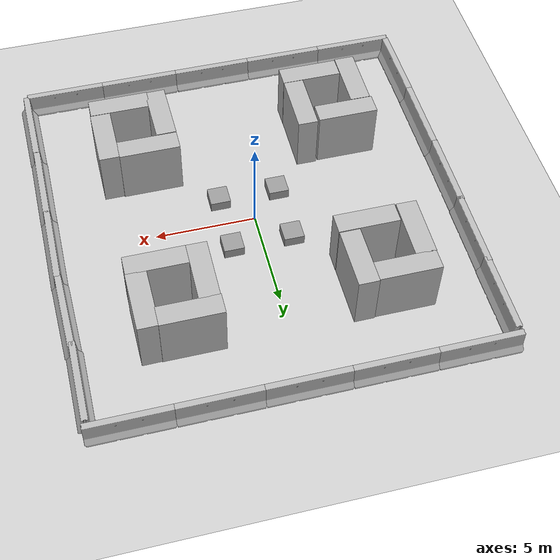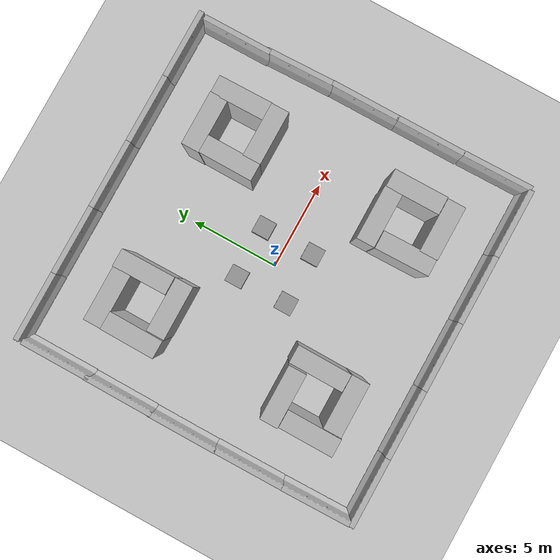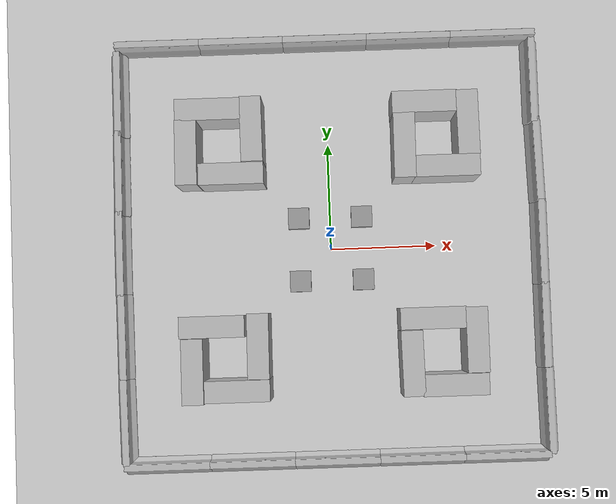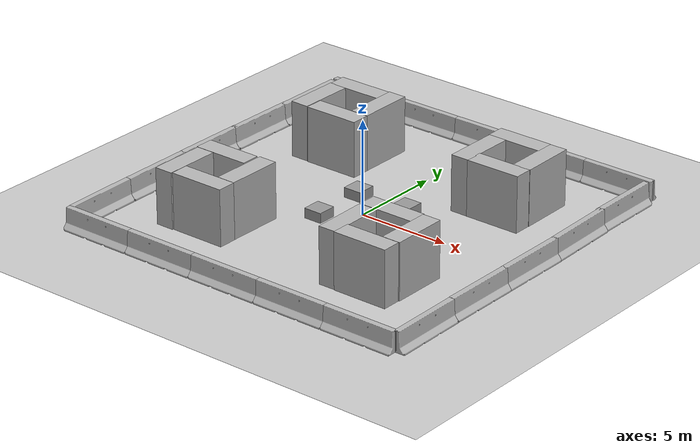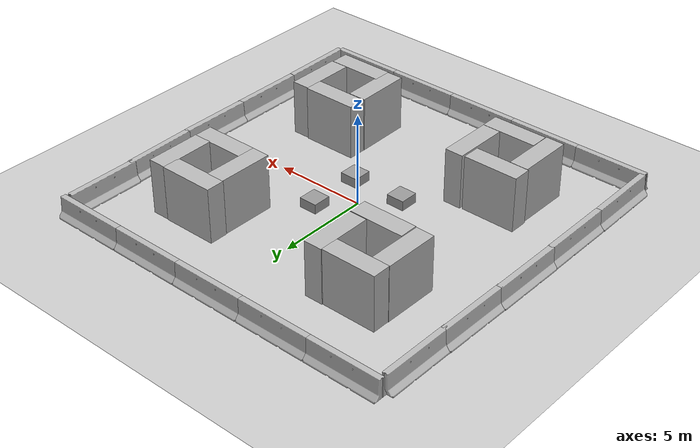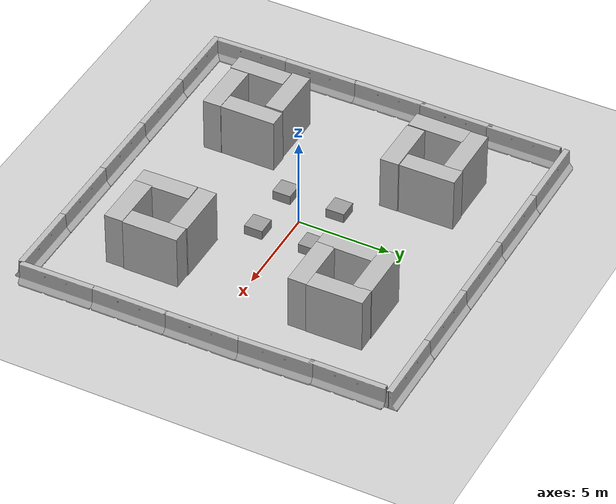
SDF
<sdf version="1.4">
 <world name="default">
  <light name="sun" type="directional">
   <pose>0 0 10 0 -0 0</pose>
   <diffuse>0.8 0.8 0.8 1</diffuse>
   <specular>0.2 0.2 0.2 1</specular>
   <attenuation>
    <range>1000</range>
    <constant>0.9</constant>
    <linear>0.01</linear>
    <quadratic>0.001</quadratic>
   </attenuation>
   <direction>-0.5 0.1 -0.9</direction>
  </light>
  <model name="ground_plane">
   <static>1</static>
   <link name="link">
    <collision name="collision">
     <geometry><plane><normal>0 0 1</normal><size>100 100</size></plane></geometry>
     <surface><friction><ode><mu>100</mu><mu2>50</mu2></ode></friction></surface>
    </collision>
    <visual name="visual">
     <cast_shadows>0</cast_shadows>
     <geometry><plane><normal>0 0 1</normal><size>100 100</size></plane></geometry>
     <material>
      <script><uri>file://media/materials/scripts/gazebo.material</uri><name>Gazebo/Grey</name></script>
     </material>
    </visual>
    <velocity_decay><linear>0</linear><angular>0</angular></velocity_decay>
   </link>
  </model>
  <physics type="ode">
   <max_step_size>0.001</max_step_size>
   <real_time_factor>1</real_time_factor>
   <real_time_update_rate>1000</real_time_update_rate>
   <gravity>0 0 -9.8</gravity>
  </physics>
  <scene><ambient>0.4 0.4 0.4 1</ambient><background>0.7 0.7 0.7 1</background><shadows>1</shadows></scene>
  <spherical_coordinates>
   <surface_model>EARTH_WGS84</surface_model>
   <latitude_deg>0</latitude_deg>
   <longitude_deg>0</longitude_deg>
   <elevation>0</elevation>
   <heading_deg>0</heading_deg>
  </spherical_coordinates>
  <model name="jersey_barrier">
   <static>1</static>
   <link name="link">
    <visual name="visual">
     <geometry><mesh><uri>model://jersey_barrier/meshes/jersey_barrier.dae</uri></mesh></geometry>
    </visual>
    <collision name="upright">
     <pose>0 0 0.5715 0 -0 0</pose>
     <geometry><box><size>4.06542 0.3063 1.143</size></box></geometry>
    </collision>
    <collision name="base">
     <pose>0 0 0.032258 0 -0 0</pose>
     <geometry><box><size>4.06542 0.8107 0.064516</size></box></geometry>
    </collision>
    <collision name="base2">
     <pose>0 0 0.1 0 -0 0</pose>
     <geometry><box><size>4.06542 0.65 0.1</size></box></geometry>
    </collision>
    <collision name="base3">
     <pose>0 0 0.2 0 -0 0</pose>
     <geometry><box><size>4.06542 0.5 0.1</size></box></geometry>
    </collision>
    <collision name="left-angle">
     <pose>0 -0.224 0.2401 0.9 -0 0</pose>
     <geometry><box><size>4.06542 0.5 0.064516</size></box></geometry>
    </collision>
    <collision name="right-angle">
     <pose>0 0.224 0.2401 -0.9 0 0</pose>
     <geometry><box><size>4.06542 0.5 0.064516</size></box></geometry>
    </collision>
    <velocity_decay><linear>0</linear><angular>0</angular></velocity_decay>
   </link>
   <pose>0 -10 0 0 -0 0</pose>
  </model>
  <model name="jersey_barrier_0">
   <static>1</static>
   <link name="link">
    <visual name="visual">
     <geometry><mesh><uri>model://jersey_barrier/meshes/jersey_barrier.dae</uri></mesh></geometry>
    </visual>
    <collision name="upright">
     <pose>0 0 0.5715 0 -0 0</pose>
     <geometry><box><size>4.06542 0.3063 1.143</size></box></geometry>
    </collision>
    <collision name="base">
     <pose>0 0 0.032258 0 -0 0</pose>
     <geometry><box><size>4.06542 0.8107 0.064516</size></box></geometry>
    </collision>
    <collision name="base2">
     <pose>0 0 0.1 0 -0 0</pose>
     <geometry><box><size>4.06542 0.65 0.1</size></box></geometry>
    </collision>
    <collision name="base3">
     <pose>0 0 0.2 0 -0 0</pose>
     <geometry><box><size>4.06542 0.5 0.1</size></box></geometry>
    </collision>
    <collision name="left-angle">
     <pose>0 -0.224 0.2401 0.9 -0 0</pose>
     <geometry><box><size>4.06542 0.5 0.064516</size></box></geometry>
    </collision>
    <collision name="right-angle">
     <pose>0 0.224 0.2401 -0.9 0 0</pose>
     <geometry><box><size>4.06542 0.5 0.064516</size></box></geometry>
    </collision>
    <velocity_decay><linear>0</linear><angular>0</angular></velocity_decay>
   </link>
   <pose>0 10 0 0 -0 0</pose>
  </model>
  <model name="jersey_barrier_1">
   <static>1</static>
   <link name="link">
    <visual name="visual">
     <geometry><mesh><uri>model://jersey_barrier/meshes/jersey_barrier.dae</uri></mesh></geometry>
    </visual>
    <collision name="upright">
     <pose>0 0 0.5715 0 -0 0</pose>
     <geometry><box><size>4.06542 0.3063 1.143</size></box></geometry>
    </collision>
    <collision name="base">
     <pose>0 0 0.032258 0 -0 0</pose>
     <geometry><box><size>4.06542 0.8107 0.064516</size></box></geometry>
    </collision>
    <collision name="base2">
     <pose>0 0 0.1 0 -0 0</pose>
     <geometry><box><size>4.06542 0.65 0.1</size></box></geometry>
    </collision>
    <collision name="base3">
     <pose>0 0 0.2 0 -0 0</pose>
     <geometry><box><size>4.06542 0.5 0.1</size></box></geometry>
    </collision>
    <collision name="left-angle">
     <pose>0 -0.224 0.2401 0.9 -0 0</pose>
     <geometry><box><size>4.06542 0.5 0.064516</size></box></geometry>
    </collision>
    <collision name="right-angle">
     <pose>0 0.224 0.2401 -0.9 0 0</pose>
     <geometry><box><size>4.06542 0.5 0.064516</size></box></geometry>
    </collision>
    <velocity_decay><linear>0</linear><angular>0</angular></velocity_decay>
   </link>
   <pose>4 10 0 0 -0 0</pose>
  </model>
  <model name="jersey_barrier_2">
   <static>1</static>
   <link name="link">
    <visual name="visual">
     <geometry><mesh><uri>model://jersey_barrier/meshes/jersey_barrier.dae</uri></mesh></geometry>
    </visual>
    <collision name="upright">
     <pose>0 0 0.5715 0 -0 0</pose>
     <geometry><box><size>4.06542 0.3063 1.143</size></box></geometry>
    </collision>
    <collision name="base">
     <pose>0 0 0.032258 0 -0 0</pose>
     <geometry><box><size>4.06542 0.8107 0.064516</size></box></geometry>
    </collision>
    <collision name="base2">
     <pose>0 0 0.1 0 -0 0</pose>
     <geometry><box><size>4.06542 0.65 0.1</size></box></geometry>
    </collision>
    <collision name="base3">
     <pose>0 0 0.2 0 -0 0</pose>
     <geometry><box><size>4.06542 0.5 0.1</size></box></geometry>
    </collision>
    <collision name="left-angle">
     <pose>0 -0.224 0.2401 0.9 -0 0</pose>
     <geometry><box><size>4.06542 0.5 0.064516</size></box></geometry>
    </collision>
    <collision name="right-angle">
     <pose>0 0.224 0.2401 -0.9 0 0</pose>
     <geometry><box><size>4.06542 0.5 0.064516</size></box></geometry>
    </collision>
    <velocity_decay><linear>0</linear><angular>0</angular></velocity_decay>
   </link>
   <pose>-4 10 0 0 -0 0</pose>
  </model>
  <model name="jersey_barrier_3">
   <static>1</static>
   <link name="link">
    <visual name="visual">
     <geometry><mesh><uri>model://jersey_barrier/meshes/jersey_barrier.dae</uri></mesh></geometry>
    </visual>
    <collision name="upright">
     <pose>0 0 0.5715 0 -0 0</pose>
     <geometry><box><size>4.06542 0.3063 1.143</size></box></geometry>
    </collision>
    <collision name="base">
     <pose>0 0 0.032258 0 -0 0</pose>
     <geometry><box><size>4.06542 0.8107 0.064516</size></box></geometry>
    </collision>
    <collision name="base2">
     <pose>0 0 0.1 0 -0 0</pose>
     <geometry><box><size>4.06542 0.65 0.1</size></box></geometry>
    </collision>
    <collision name="base3">
     <pose>0 0 0.2 0 -0 0</pose>
     <geometry><box><size>4.06542 0.5 0.1</size></box></geometry>
    </collision>
    <collision name="left-angle">
     <pose>0 -0.224 0.2401 0.9 -0 0</pose>
     <geometry><box><size>4.06542 0.5 0.064516</size></box></geometry>
    </collision>
    <collision name="right-angle">
     <pose>0 0.224 0.2401 -0.9 0 0</pose>
     <geometry><box><size>4.06542 0.5 0.064516</size></box></geometry>
    </collision>
    <velocity_decay><linear>0</linear><angular>0</angular></velocity_decay>
   </link>
   <pose>-8 10 0 0 -0 0</pose>
  </model>
  <model name="jersey_barrier_4">
   <static>1</static>
   <link name="link">
    <visual name="visual">
     <geometry><mesh><uri>model://jersey_barrier/meshes/jersey_barrier.dae</uri></mesh></geometry>
    </visual>
    <collision name="upright">
     <pose>0 0 0.5715 0 -0 0</pose>
     <geometry><box><size>4.06542 0.3063 1.143</size></box></geometry>
    </collision>
    <collision name="base">
     <pose>0 0 0.032258 0 -0 0</pose>
     <geometry><box><size>4.06542 0.8107 0.064516</size></box></geometry>
    </collision>
    <collision name="base2">
     <pose>0 0 0.1 0 -0 0</pose>
     <geometry><box><size>4.06542 0.65 0.1</size></box></geometry>
    </collision>
    <collision name="base3">
     <pose>0 0 0.2 0 -0 0</pose>
     <geometry><box><size>4.06542 0.5 0.1</size></box></geometry>
    </collision>
    <collision name="left-angle">
     <pose>0 -0.224 0.2401 0.9 -0 0</pose>
     <geometry><box><size>4.06542 0.5 0.064516</size></box></geometry>
    </collision>
    <collision name="right-angle">
     <pose>0 0.224 0.2401 -0.9 0 0</pose>
     <geometry><box><size>4.06542 0.5 0.064516</size></box></geometry>
    </collision>
    <velocity_decay><linear>0</linear><angular>0</angular></velocity_decay>
   </link>
   <pose>-4 -10 0 0 -0 0</pose>
  </model>
  <model name="jersey_barrier_5">
   <static>1</static>
   <link name="link">
    <visual name="visual">
     <geometry><mesh><uri>model://jersey_barrier/meshes/jersey_barrier.dae</uri></mesh></geometry>
    </visual>
    <collision name="upright">
     <pose>0 0 0.5715 0 -0 0</pose>
     <geometry><box><size>4.06542 0.3063 1.143</size></box></geometry>
    </collision>
    <collision name="base">
     <pose>0 0 0.032258 0 -0 0</pose>
     <geometry><box><size>4.06542 0.8107 0.064516</size></box></geometry>
    </collision>
    <collision name="base2">
     <pose>0 0 0.1 0 -0 0</pose>
     <geometry><box><size>4.06542 0.65 0.1</size></box></geometry>
    </collision>
    <collision name="base3">
     <pose>0 0 0.2 0 -0 0</pose>
     <geometry><box><size>4.06542 0.5 0.1</size></box></geometry>
    </collision>
    <collision name="left-angle">
     <pose>0 -0.224 0.2401 0.9 -0 0</pose>
     <geometry><box><size>4.06542 0.5 0.064516</size></box></geometry>
    </collision>
    <collision name="right-angle">
     <pose>0 0.224 0.2401 -0.9 0 0</pose>
     <geometry><box><size>4.06542 0.5 0.064516</size></box></geometry>
    </collision>
    <velocity_decay><linear>0</linear><angular>0</angular></velocity_decay>
   </link>
   <pose>-8 -10 0 0 -0 0</pose>
  </model>
  <model name="jersey_barrier_6">
   <static>1</static>
   <link name="link">
    <visual name="visual">
     <geometry><mesh><uri>model://jersey_barrier/meshes/jersey_barrier.dae</uri></mesh></geometry>
    </visual>
    <collision name="upright">
     <pose>0 0 0.5715 0 -0 0</pose>
     <geometry><box><size>4.06542 0.3063 1.143</size></box></geometry>
    </collision>
    <collision name="base">
     <pose>0 0 0.032258 0 -0 0</pose>
     <geometry><box><size>4.06542 0.8107 0.064516</size></box></geometry>
    </collision>
    <collision name="base2">
     <pose>0 0 0.1 0 -0 0</pose>
     <geometry><box><size>4.06542 0.65 0.1</size></box></geometry>
    </collision>
    <collision name="base3">
     <pose>0 0 0.2 0 -0 0</pose>
     <geometry><box><size>4.06542 0.5 0.1</size></box></geometry>
    </collision>
    <collision name="left-angle">
     <pose>0 -0.224 0.2401 0.9 -0 0</pose>
     <geometry><box><size>4.06542 0.5 0.064516</size></box></geometry>
    </collision>
    <collision name="right-angle">
     <pose>0 0.224 0.2401 -0.9 0 0</pose>
     <geometry><box><size>4.06542 0.5 0.064516</size></box></geometry>
    </collision>
    <velocity_decay><linear>0</linear><angular>0</angular></velocity_decay>
   </link>
   <pose>8 10 0 0 -0 0</pose>
  </model>
  <model name="jersey_barrier_7">
   <static>1</static>
   <link name="link">
    <visual name="visual">
     <geometry><mesh><uri>model://jersey_barrier/meshes/jersey_barrier.dae</uri></mesh></geometry>
    </visual>
    <collision name="upright">
     <pose>0 0 0.5715 0 -0 0</pose>
     <geometry><box><size>4.06542 0.3063 1.143</size></box></geometry>
    </collision>
    <collision name="base">
     <pose>0 0 0.032258 0 -0 0</pose>
     <geometry><box><size>4.06542 0.8107 0.064516</size></box></geometry>
    </collision>
    <collision name="base2">
     <pose>0 0 0.1 0 -0 0</pose>
     <geometry><box><size>4.06542 0.65 0.1</size></box></geometry>
    </collision>
    <collision name="base3">
     <pose>0 0 0.2 0 -0 0</pose>
     <geometry><box><size>4.06542 0.5 0.1</size></box></geometry>
    </collision>
    <collision name="left-angle">
     <pose>0 -0.224 0.2401 0.9 -0 0</pose>
     <geometry><box><size>4.06542 0.5 0.064516</size></box></geometry>
    </collision>
    <collision name="right-angle">
     <pose>0 0.224 0.2401 -0.9 0 0</pose>
     <geometry><box><size>4.06542 0.5 0.064516</size></box></geometry>
    </collision>
    <velocity_decay><linear>0</linear><angular>0</angular></velocity_decay>
   </link>
   <pose>4 -10 0 0 -0 0</pose>
  </model>
  <model name="jersey_barrier_8">
   <static>1</static>
   <link name="link">
    <visual name="visual">
     <geometry><mesh><uri>model://jersey_barrier/meshes/jersey_barrier.dae</uri></mesh></geometry>
    </visual>
    <collision name="upright">
     <pose>0 0 0.5715 0 -0 0</pose>
     <geometry><box><size>4.06542 0.3063 1.143</size></box></geometry>
    </collision>
    <collision name="base">
     <pose>0 0 0.032258 0 -0 0</pose>
     <geometry><box><size>4.06542 0.8107 0.064516</size></box></geometry>
    </collision>
    <collision name="base2">
     <pose>0 0 0.1 0 -0 0</pose>
     <geometry><box><size>4.06542 0.65 0.1</size></box></geometry>
    </collision>
    <collision name="base3">
     <pose>0 0 0.2 0 -0 0</pose>
     <geometry><box><size>4.06542 0.5 0.1</size></box></geometry>
    </collision>
    <collision name="left-angle">
     <pose>0 -0.224 0.2401 0.9 -0 0</pose>
     <geometry><box><size>4.06542 0.5 0.064516</size></box></geometry>
    </collision>
    <collision name="right-angle">
     <pose>0 0.224 0.2401 -0.9 0 0</pose>
     <geometry><box><size>4.06542 0.5 0.064516</size></box></geometry>
    </collision>
    <velocity_decay><linear>0</linear><angular>0</angular></velocity_decay>
   </link>
   <pose>8 -10 0 0 -0 0</pose>
  </model>
  <model name="jersey_barrier_9">
   <static>1</static>
   <link name="link">
    <visual name="visual">
     <geometry><mesh><uri>model://jersey_barrier/meshes/jersey_barrier.dae</uri></mesh></geometry>
    </visual>
    <collision name="upright">
     <pose>0 0 0.5715 0 -0 0</pose>
     <geometry><box><size>4.06542 0.3063 1.143</size></box></geometry>
    </collision>
    <collision name="base">
     <pose>0 0 0.032258 0 -0 0</pose>
     <geometry><box><size>4.06542 0.8107 0.064516</size></box></geometry>
    </collision>
    <collision name="base2">
     <pose>0 0 0.1 0 -0 0</pose>
     <geometry><box><size>4.06542 0.65 0.1</size></box></geometry>
    </collision>
    <collision name="base3">
     <pose>0 0 0.2 0 -0 0</pose>
     <geometry><box><size>4.06542 0.5 0.1</size></box></geometry>
    </collision>
    <collision name="left-angle">
     <pose>0 -0.224 0.2401 0.9 -0 0</pose>
     <geometry><box><size>4.06542 0.5 0.064516</size></box></geometry>
    </collision>
    <collision name="right-angle">
     <pose>0 0.224 0.2401 -0.9 0 0</pose>
     <geometry><box><size>4.06542 0.5 0.064516</size></box></geometry>
    </collision>
    <velocity_decay><linear>0</linear><angular>0</angular></velocity_decay>
   </link>
   <pose>10 0 0 0 -0 1.57212</pose>
  </model>
  <model name="jersey_barrier_10">
   <static>1</static>
   <link name="link">
    <visual name="visual">
     <geometry><mesh><uri>model://jersey_barrier/meshes/jersey_barrier.dae</uri></mesh></geometry>
    </visual>
    <collision name="upright">
     <pose>0 0 0.5715 0 -0 0</pose>
     <geometry><box><size>4.06542 0.3063 1.143</size></box></geometry>
    </collision>
    <collision name="base">
     <pose>0 0 0.032258 0 -0 0</pose>
     <geometry><box><size>4.06542 0.8107 0.064516</size></box></geometry>
    </collision>
    <collision name="base2">
     <pose>0 0 0.1 0 -0 0</pose>
     <geometry><box><size>4.06542 0.65 0.1</size></box></geometry>
    </collision>
    <collision name="base3">
     <pose>0 0 0.2 0 -0 0</pose>
     <geometry><box><size>4.06542 0.5 0.1</size></box></geometry>
    </collision>
    <collision name="left-angle">
     <pose>0 -0.224 0.2401 0.9 -0 0</pose>
     <geometry><box><size>4.06542 0.5 0.064516</size></box></geometry>
    </collision>
    <collision name="right-angle">
     <pose>0 0.224 0.2401 -0.9 0 0</pose>
     <geometry><box><size>4.06542 0.5 0.064516</size></box></geometry>
    </collision>
    <velocity_decay><linear>0</linear><angular>0</angular></velocity_decay>
   </link>
   <pose>10.0125 -3.92633 0 0 -0 1.5717</pose>
  </model>
  <model name="jersey_barrier_11">
   <static>1</static>
   <link name="link">
    <visual name="visual">
     <geometry><mesh><uri>model://jersey_barrier/meshes/jersey_barrier.dae</uri></mesh></geometry>
    </visual>
    <collision name="upright">
     <pose>0 0 0.5715 0 -0 0</pose>
     <geometry><box><size>4.06542 0.3063 1.143</size></box></geometry>
    </collision>
    <collision name="base">
     <pose>0 0 0.032258 0 -0 0</pose>
     <geometry><box><size>4.06542 0.8107 0.064516</size></box></geometry>
    </collision>
    <collision name="base2">
     <pose>0 0 0.1 0 -0 0</pose>
     <geometry><box><size>4.06542 0.65 0.1</size></box></geometry>
    </collision>
    <collision name="base3">
     <pose>0 0 0.2 0 -0 0</pose>
     <geometry><box><size>4.06542 0.5 0.1</size></box></geometry>
    </collision>
    <collision name="left-angle">
     <pose>0 -0.224 0.2401 0.9 -0 0</pose>
     <geometry><box><size>4.06542 0.5 0.064516</size></box></geometry>
    </collision>
    <collision name="right-angle">
     <pose>0 0.224 0.2401 -0.9 0 0</pose>
     <geometry><box><size>4.06542 0.5 0.064516</size></box></geometry>
    </collision>
    <velocity_decay><linear>0</linear><angular>0</angular></velocity_decay>
   </link>
   <pose>10.0607 -7.95402 0 0 -0 1.58462</pose>
  </model>
  <model name="jersey_barrier_12">
   <static>1</static>
   <link name="link">
    <visual name="visual">
     <geometry><mesh><uri>model://jersey_barrier/meshes/jersey_barrier.dae</uri></mesh></geometry>
    </visual>
    <collision name="upright">
     <pose>0 0 0.5715 0 -0 0</pose>
     <geometry><box><size>4.06542 0.3063 1.143</size></box></geometry>
    </collision>
    <collision name="base">
     <pose>0 0 0.032258 0 -0 0</pose>
     <geometry><box><size>4.06542 0.8107 0.064516</size></box></geometry>
    </collision>
    <collision name="base2">
     <pose>0 0 0.1 0 -0 0</pose>
     <geometry><box><size>4.06542 0.65 0.1</size></box></geometry>
    </collision>
    <collision name="base3">
     <pose>0 0 0.2 0 -0 0</pose>
     <geometry><box><size>4.06542 0.5 0.1</size></box></geometry>
    </collision>
    <collision name="left-angle">
     <pose>0 -0.224 0.2401 0.9 -0 0</pose>
     <geometry><box><size>4.06542 0.5 0.064516</size></box></geometry>
    </collision>
    <collision name="right-angle">
     <pose>0 0.224 0.2401 -0.9 0 0</pose>
     <geometry><box><size>4.06542 0.5 0.064516</size></box></geometry>
    </collision>
    <velocity_decay><linear>0</linear><angular>0</angular></velocity_decay>
   </link>
   <pose>9.93065 3.92137 0 0 -0 1.59731</pose>
  </model>
  <model name="jersey_barrier_13">
   <static>1</static>
   <link name="link">
    <visual name="visual">
     <geometry><mesh><uri>model://jersey_barrier/meshes/jersey_barrier.dae</uri></mesh></geometry>
    </visual>
    <collision name="upright">
     <pose>0 0 0.5715 0 -0 0</pose>
     <geometry><box><size>4.06542 0.3063 1.143</size></box></geometry>
    </collision>
    <collision name="base">
     <pose>0 0 0.032258 0 -0 0</pose>
     <geometry><box><size>4.06542 0.8107 0.064516</size></box></geometry>
    </collision>
    <collision name="base2">
     <pose>0 0 0.1 0 -0 0</pose>
     <geometry><box><size>4.06542 0.65 0.1</size></box></geometry>
    </collision>
    <collision name="base3">
     <pose>0 0 0.2 0 -0 0</pose>
     <geometry><box><size>4.06542 0.5 0.1</size></box></geometry>
    </collision>
    <collision name="left-angle">
     <pose>0 -0.224 0.2401 0.9 -0 0</pose>
     <geometry><box><size>4.06542 0.5 0.064516</size></box></geometry>
    </collision>
    <collision name="right-angle">
     <pose>0 0.224 0.2401 -0.9 0 0</pose>
     <geometry><box><size>4.06542 0.5 0.064516</size></box></geometry>
    </collision>
    <velocity_decay><linear>0</linear><angular>0</angular></velocity_decay>
   </link>
   <pose>9.8287 7.71606 0 0 -0 1.57404</pose>
  </model>
  <model name="jersey_barrier_14">
   <static>1</static>
   <link name="link">
    <visual name="visual">
     <geometry><mesh><uri>model://jersey_barrier/meshes/jersey_barrier.dae</uri></mesh></geometry>
    </visual>
    <collision name="upright">
     <pose>0 0 0.5715 0 -0 0</pose>
     <geometry><box><size>4.06542 0.3063 1.143</size></box></geometry>
    </collision>
    <collision name="base">
     <pose>0 0 0.032258 0 -0 0</pose>
     <geometry><box><size>4.06542 0.8107 0.064516</size></box></geometry>
    </collision>
    <collision name="base2">
     <pose>0 0 0.1 0 -0 0</pose>
     <geometry><box><size>4.06542 0.65 0.1</size></box></geometry>
    </collision>
    <collision name="base3">
     <pose>0 0 0.2 0 -0 0</pose>
     <geometry><box><size>4.06542 0.5 0.1</size></box></geometry>
    </collision>
    <collision name="left-angle">
     <pose>0 -0.224 0.2401 0.9 -0 0</pose>
     <geometry><box><size>4.06542 0.5 0.064516</size></box></geometry>
    </collision>
    <collision name="right-angle">
     <pose>0 0.224 0.2401 -0.9 0 0</pose>
     <geometry><box><size>4.06542 0.5 0.064516</size></box></geometry>
    </collision>
    <velocity_decay><linear>0</linear><angular>0</angular></velocity_decay>
   </link>
   <pose>-9.98004 0.061717 0 0 -0 1.56984</pose>
  </model>
  <model name="jersey_barrier_15">
   <static>1</static>
   <link name="link">
    <visual name="visual">
     <geometry><mesh><uri>model://jersey_barrier/meshes/jersey_barrier.dae</uri></mesh></geometry>
    </visual>
    <collision name="upright">
     <pose>0 0 0.5715 0 -0 0</pose>
     <geometry><box><size>4.06542 0.3063 1.143</size></box></geometry>
    </collision>
    <collision name="base">
     <pose>0 0 0.032258 0 -0 0</pose>
     <geometry><box><size>4.06542 0.8107 0.064516</size></box></geometry>
    </collision>
    <collision name="base2">
     <pose>0 0 0.1 0 -0 0</pose>
     <geometry><box><size>4.06542 0.65 0.1</size></box></geometry>
    </collision>
    <collision name="base3">
     <pose>0 0 0.2 0 -0 0</pose>
     <geometry><box><size>4.06542 0.5 0.1</size></box></geometry>
    </collision>
    <collision name="left-angle">
     <pose>0 -0.224 0.2401 0.9 -0 0</pose>
     <geometry><box><size>4.06542 0.5 0.064516</size></box></geometry>
    </collision>
    <collision name="right-angle">
     <pose>0 0.224 0.2401 -0.9 0 0</pose>
     <geometry><box><size>4.06542 0.5 0.064516</size></box></geometry>
    </collision>
    <velocity_decay><linear>0</linear><angular>0</angular></velocity_decay>
   </link>
   <pose>-9.95558 -3.87824 0 0 -0 1.57542</pose>
  </model>
  <model name="jersey_barrier_16">
   <static>1</static>
   <link name="link">
    <visual name="visual">
     <geometry><mesh><uri>model://jersey_barrier/meshes/jersey_barrier.dae</uri></mesh></geometry>
    </visual>
    <collision name="upright">
     <pose>0 0 0.5715 0 -0 0</pose>
     <geometry><box><size>4.06542 0.3063 1.143</size></box></geometry>
    </collision>
    <collision name="base">
     <pose>0 0 0.032258 0 -0 0</pose>
     <geometry><box><size>4.06542 0.8107 0.064516</size></box></geometry>
    </collision>
    <collision name="base2">
     <pose>0 0 0.1 0 -0 0</pose>
     <geometry><box><size>4.06542 0.65 0.1</size></box></geometry>
    </collision>
    <collision name="base3">
     <pose>0 0 0.2 0 -0 0</pose>
     <geometry><box><size>4.06542 0.5 0.1</size></box></geometry>
    </collision>
    <collision name="left-angle">
     <pose>0 -0.224 0.2401 0.9 -0 0</pose>
     <geometry><box><size>4.06542 0.5 0.064516</size></box></geometry>
    </collision>
    <collision name="right-angle">
     <pose>0 0.224 0.2401 -0.9 0 0</pose>
     <geometry><box><size>4.06542 0.5 0.064516</size></box></geometry>
    </collision>
    <velocity_decay><linear>0</linear><angular>0</angular></velocity_decay>
   </link>
   <pose>-9.92511 -7.88588 0 0 -0 1.58587</pose>
  </model>
  <model name="jersey_barrier_17">
   <static>1</static>
   <link name="link">
    <visual name="visual">
     <geometry><mesh><uri>model://jersey_barrier/meshes/jersey_barrier.dae</uri></mesh></geometry>
    </visual>
    <collision name="upright">
     <pose>0 0 0.5715 0 -0 0</pose>
     <geometry><box><size>4.06542 0.3063 1.143</size></box></geometry>
    </collision>
    <collision name="base">
     <pose>0 0 0.032258 0 -0 0</pose>
     <geometry><box><size>4.06542 0.8107 0.064516</size></box></geometry>
    </collision>
    <collision name="base2">
     <pose>0 0 0.1 0 -0 0</pose>
     <geometry><box><size>4.06542 0.65 0.1</size></box></geometry>
    </collision>
    <collision name="base3">
     <pose>0 0 0.2 0 -0 0</pose>
     <geometry><box><size>4.06542 0.5 0.1</size></box></geometry>
    </collision>
    <collision name="left-angle">
     <pose>0 -0.224 0.2401 0.9 -0 0</pose>
     <geometry><box><size>4.06542 0.5 0.064516</size></box></geometry>
    </collision>
    <collision name="right-angle">
     <pose>0 0.224 0.2401 -0.9 0 0</pose>
     <geometry><box><size>4.06542 0.5 0.064516</size></box></geometry>
    </collision>
    <velocity_decay><linear>0</linear><angular>0</angular></velocity_decay>
   </link>
   <pose>-9.94604 3.89721 0 0 -0 1.56587</pose>
  </model>
  <model name="jersey_barrier_19">
   <static>1</static>
   <link name="link">
    <visual name="visual">
     <geometry><mesh><uri>model://jersey_barrier/meshes/jersey_barrier.dae</uri></mesh></geometry>
    </visual>
    <collision name="upright">
     <pose>0 0 0.5715 0 -0 0</pose>
     <geometry><box><size>4.06542 0.3063 1.143</size></box></geometry>
    </collision>
    <collision name="base">
     <pose>0 0 0.032258 0 -0 0</pose>
     <geometry><box><size>4.06542 0.8107 0.064516</size></box></geometry>
    </collision>
    <collision name="base2">
     <pose>0 0 0.1 0 -0 0</pose>
     <geometry><box><size>4.06542 0.65 0.1</size></box></geometry>
    </collision>
    <collision name="base3">
     <pose>0 0 0.2 0 -0 0</pose>
     <geometry><box><size>4.06542 0.5 0.1</size></box></geometry>
    </collision>
    <collision name="left-angle">
     <pose>0 -0.224 0.2401 0.9 -0 0</pose>
     <geometry><box><size>4.06542 0.5 0.064516</size></box></geometry>
    </collision>
    <collision name="right-angle">
     <pose>0 0.224 0.2401 -0.9 0 0</pose>
     <geometry><box><size>4.06542 0.5 0.064516</size></box></geometry>
    </collision>
    <velocity_decay><linear>0</linear><angular>0</angular></velocity_decay>
   </link>
   <pose>-9.91276 7.67006 0 0 -0 1.56957</pose>
  </model>
  <model name="brick_box_3x1x3">
   <static>1</static>
   <link name="chassis">
    <pose>0 0 1.5 0 -0 0</pose>
    <collision name="collision"><geometry><box><size>3 1 3</size></box></geometry></collision>
    <visual name="visual">
     <geometry><mesh><uri>model://brick_box_3x1x3/meshes/simple_box.dae</uri><scale>3 1 3</scale></mesh></geometry>
     <material>
      <script>
       <uri>model://brick_box_3x1x3/materials/scripts</uri>
       <uri>model://brick_box_3x1x3/materials/textures</uri>
       <name>BrickBox/Diffuse</name>
      </script>
     </material>
    </visual>
    <velocity_decay><linear>0</linear><angular>0</angular></velocity_decay>
   </link>
   <pose>4.55261 -3.43543 0 0 -0 0</pose>
  </model>
  <model name="brick_box_3x1x3_0">
   <static>1</static>
   <link name="chassis">
    <pose>0 0 1.5 0 -0 0</pose>
    <collision name="collision"><geometry><box><size>3 1 3</size></box></geometry></collision>
    <visual name="visual">
     <geometry><mesh><uri>model://brick_box_3x1x3/meshes/simple_box.dae</uri><scale>3 1 3</scale></mesh></geometry>
     <material>
      <script>
       <uri>model://brick_box_3x1x3/materials/scripts</uri>
       <uri>model://brick_box_3x1x3/materials/textures</uri>
       <name>BrickBox/Diffuse</name>
      </script>
     </material>
    </visual>
    <velocity_decay><linear>0</linear><angular>0</angular></velocity_decay>
   </link>
   <pose>5.499 -6.4988 0 0 -0 0</pose>
  </model>
  <model name="brick_box_3x1x3_1">
   <static>1</static>
   <link name="chassis">
    <pose>0 0 1.5 0 -0 0</pose>
    <collision name="collision"><geometry><box><size>3 1 3</size></box></geometry></collision>
    <visual name="visual">
     <geometry><mesh><uri>model://brick_box_3x1x3/meshes/simple_box.dae</uri><scale>3 1 3</scale></mesh></geometry>
     <material>
      <script>
       <uri>model://brick_box_3x1x3/materials/scripts</uri>
       <uri>model://brick_box_3x1x3/materials/textures</uri>
       <name>BrickBox/Diffuse</name>
      </script>
     </material>
    </visual>
    <velocity_decay><linear>0</linear><angular>0</angular></velocity_decay>
   </link>
   <pose>6.54053 -4.48216 0 0 0 -1.56801</pose>
  </model>
  <model name="brick_box_3x1x3_2">
   <static>1</static>
   <link name="chassis">
    <pose>0 0 1.5 0 -0 0</pose>
    <collision name="collision"><geometry><box><size>3 1 3</size></box></geometry></collision>
    <visual name="visual">
     <geometry><mesh><uri>model://brick_box_3x1x3/meshes/simple_box.dae</uri><scale>3 1 3</scale></mesh></geometry>
     <material>
      <script>
       <uri>model://brick_box_3x1x3/materials/scripts</uri>
       <uri>model://brick_box_3x1x3/materials/textures</uri>
       <name>BrickBox/Diffuse</name>
      </script>
     </material>
    </visual>
    <velocity_decay><linear>0</linear><angular>0</angular></velocity_decay>
   </link>
   <pose>3.56877 -5.47035 0 0 0 -1.55497</pose>
  </model>
  <model name="brick_box_3x1x3_3">
   <static>1</static>
   <link name="chassis">
    <pose>0 0 1.5 0 -0 0</pose>
    <collision name="collision"><geometry><box><size>3 1 3</size></box></geometry></collision>
    <visual name="visual">
     <geometry><mesh><uri>model://brick_box_3x1x3/meshes/simple_box.dae</uri><scale>3 1 3</scale></mesh></geometry>
     <material>
      <script>
       <uri>model://brick_box_3x1x3/materials/scripts</uri>
       <uri>model://brick_box_3x1x3/materials/textures</uri>
       <name>BrickBox/Diffuse</name>
      </script>
     </material>
    </visual>
    <velocity_decay><linear>0</linear><angular>0</angular></velocity_decay>
   </link>
   <pose>4.50333 6.5241 0 0 -0 0</pose>
  </model>
  <model name="brick_box_3x1x3_4">
   <static>1</static>
   <link name="chassis">
    <pose>0 0 1.5 0 -0 0</pose>
    <collision name="collision"><geometry><box><size>3 1 3</size></box></geometry></collision>
    <visual name="visual">
     <geometry><mesh><uri>model://brick_box_3x1x3/meshes/simple_box.dae</uri><scale>3 1 3</scale></mesh></geometry>
     <material>
      <script>
       <uri>model://brick_box_3x1x3/materials/scripts</uri>
       <uri>model://brick_box_3x1x3/materials/textures</uri>
       <name>BrickBox/Diffuse</name>
      </script>
     </material>
    </visual>
    <velocity_decay><linear>0</linear><angular>0</angular></velocity_decay>
   </link>
   <pose>5.46933 3.53471 0 0 -0 0</pose>
  </model>
  <model name="brick_box_3x1x3_5">
   <static>1</static>
   <link name="chassis">
    <pose>0 0 1.5 0 -0 0</pose>
    <collision name="collision"><geometry><box><size>3 1 3</size></box></geometry></collision>
    <visual name="visual">
     <geometry><mesh><uri>model://brick_box_3x1x3/meshes/simple_box.dae</uri><scale>3 1 3</scale></mesh></geometry>
     <material>
      <script>
       <uri>model://brick_box_3x1x3/materials/scripts</uri>
       <uri>model://brick_box_3x1x3/materials/textures</uri>
       <name>BrickBox/Diffuse</name>
      </script>
     </material>
    </visual>
    <velocity_decay><linear>0</linear><angular>0</angular></velocity_decay>
   </link>
   <pose>-5.50438 6.47631 0 0 -0 0</pose>
  </model>
  <model name="brick_box_3x1x3_6">
   <static>1</static>
   <link name="chassis">
    <pose>0 0 1.5 0 -0 0</pose>
    <collision name="collision"><geometry><box><size>3 1 3</size></box></geometry></collision>
    <visual name="visual">
     <geometry><mesh><uri>model://brick_box_3x1x3/meshes/simple_box.dae</uri><scale>3 1 3</scale></mesh></geometry>
     <material>
      <script>
       <uri>model://brick_box_3x1x3/materials/scripts</uri>
       <uri>model://brick_box_3x1x3/materials/textures</uri>
       <name>BrickBox/Diffuse</name>
      </script>
     </material>
    </visual>
    <velocity_decay><linear>0</linear><angular>0</angular></velocity_decay>
   </link>
   <pose>-4.49693 3.47939 0 0 -0 0</pose>
  </model>
  <model name="brick_box_3x1x3_7">
   <static>1</static>
   <link name="chassis">
    <pose>0 0 1.5 0 -0 0</pose>
    <collision name="collision"><geometry><box><size>3 1 3</size></box></geometry></collision>
    <visual name="visual">
     <geometry><mesh><uri>model://brick_box_3x1x3/meshes/simple_box.dae</uri><scale>3 1 3</scale></mesh></geometry>
     <material>
      <script>
       <uri>model://brick_box_3x1x3/materials/scripts</uri>
       <uri>model://brick_box_3x1x3/materials/textures</uri>
       <name>BrickBox/Diffuse</name>
      </script>
     </material>
    </visual>
    <velocity_decay><linear>0</linear><angular>0</angular></velocity_decay>
   </link>
   <pose>-5.57308 -3.52037 0 0 -0 0</pose>
  </model>
  <model name="brick_box_3x1x3_8">
   <static>1</static>
   <link name="chassis">
    <pose>0 0 1.5 0 -0 0</pose>
    <collision name="collision"><geometry><box><size>3 1 3</size></box></geometry></collision>
    <visual name="visual">
     <geometry><mesh><uri>model://brick_box_3x1x3/meshes/simple_box.dae</uri><scale>3 1 3</scale></mesh></geometry>
     <material>
      <script>
       <uri>model://brick_box_3x1x3/materials/scripts</uri>
       <uri>model://brick_box_3x1x3/materials/textures</uri>
       <name>BrickBox/Diffuse</name>
      </script>
     </material>
    </visual>
    <velocity_decay><linear>0</linear><angular>0</angular></velocity_decay>
   </link>
   <pose>-4.48176 -6.48024 0 0 -0 0</pose>
  </model>
  <model name="brick_box_3x1x3_9">
   <static>1</static>
   <link name="chassis">
    <pose>0 0 1.5 0 -0 0</pose>
    <collision name="collision"><geometry><box><size>3 1 3</size></box></geometry></collision>
    <visual name="visual">
     <geometry><mesh><uri>model://brick_box_3x1x3/meshes/simple_box.dae</uri><scale>3 1 3</scale></mesh></geometry>
     <material>
      <script>
       <uri>model://brick_box_3x1x3/materials/scripts</uri>
       <uri>model://brick_box_3x1x3/materials/textures</uri>
       <name>BrickBox/Diffuse</name>
      </script>
     </material>
    </visual>
    <velocity_decay><linear>0</linear><angular>0</angular></velocity_decay>
   </link>
   <pose>-3.51459 5.51829 0 0 0 -1.56631</pose>
  </model>
  <model name="brick_box_3x1x3_10">
   <static>1</static>
   <link name="chassis">
    <pose>0 0 1.5 0 -0 0</pose>
    <collision name="collision"><geometry><box><size>3 1 3</size></box></geometry></collision>
    <visual name="visual">
     <geometry><mesh><uri>model://brick_box_3x1x3/meshes/simple_box.dae</uri><scale>3 1 3</scale></mesh></geometry>
     <material>
      <script>
       <uri>model://brick_box_3x1x3/materials/scripts</uri>
       <uri>model://brick_box_3x1x3/materials/textures</uri>
       <name>BrickBox/Diffuse</name>
      </script>
     </material>
    </visual>
    <velocity_decay><linear>0</linear><angular>0</angular></velocity_decay>
   </link>
   <pose>-6.54017 4.51606 0 0 0 -1.58053</pose>
  </model>
  <model name="brick_box_3x1x3_11">
   <static>1</static>
   <link name="chassis">
    <pose>0 0 1.5 0 -0 0</pose>
    <collision name="collision"><geometry><box><size>3 1 3</size></box></geometry></collision>
    <visual name="visual">
     <geometry><mesh><uri>model://brick_box_3x1x3/meshes/simple_box.dae</uri><scale>3 1 3</scale></mesh></geometry>
     <material>
      <script>
       <uri>model://brick_box_3x1x3/materials/scripts</uri>
       <uri>model://brick_box_3x1x3/materials/textures</uri>
       <name>BrickBox/Diffuse</name>
      </script>
     </material>
    </visual>
    <velocity_decay><linear>0</linear><angular>0</angular></velocity_decay>
   </link>
   <pose>6.47015 5.50312 0 0 0 -1.5589</pose>
  </model>
  <model name="brick_box_3x1x3_12">
   <static>1</static>
   <link name="chassis">
    <pose>0 0 1.5 0 -0 0</pose>
    <collision name="collision"><geometry><box><size>3 1 3</size></box></geometry></collision>
    <visual name="visual">
     <geometry><mesh><uri>model://brick_box_3x1x3/meshes/simple_box.dae</uri><scale>3 1 3</scale></mesh></geometry>
     <material>
      <script>
       <uri>model://brick_box_3x1x3/materials/scripts</uri>
       <uri>model://brick_box_3x1x3/materials/textures</uri>
       <name>BrickBox/Diffuse</name>
      </script>
     </material>
    </visual>
    <velocity_decay><linear>0</linear><angular>0</angular></velocity_decay>
   </link>
   <pose>3.52411 4.54427 0 0 0 -1.57714</pose>
  </model>
  <model name="brick_box_3x1x3_14">
   <static>1</static>
   <link name="chassis">
    <pose>0 0 1.5 0 -0 0</pose>
    <collision name="collision"><geometry><box><size>3 1 3</size></box></geometry></collision>
    <visual name="visual">
     <geometry><mesh><uri>model://brick_box_3x1x3/meshes/simple_box.dae</uri><scale>3 1 3</scale></mesh></geometry>
     <material>
      <script>
       <uri>model://brick_box_3x1x3/materials/scripts</uri>
       <uri>model://brick_box_3x1x3/materials/textures</uri>
       <name>BrickBox/Diffuse</name>
      </script>
     </material>
    </visual>
    <velocity_decay><linear>0</linear><angular>0</angular></velocity_decay>
   </link>
   <pose>-6.50271 -5.53867 0 0 0 -1.57409</pose>
  </model>
  <model name="brick_box_3x1x3_15">
   <static>1</static>
   <link name="chassis">
    <pose>0 0 1.5 0 -0 0</pose>
    <collision name="collision"><geometry><box><size>3 1 3</size></box></geometry></collision>
    <visual name="visual">
     <geometry><mesh><uri>model://brick_box_3x1x3/meshes/simple_box.dae</uri><scale>3 1 3</scale></mesh></geometry>
     <material>
      <script>
       <uri>model://brick_box_3x1x3/materials/scripts</uri>
       <uri>model://brick_box_3x1x3/materials/textures</uri>
       <name>BrickBox/Diffuse</name>
      </script>
     </material>
    </visual>
    <velocity_decay><linear>0</linear><angular>0</angular></velocity_decay>
   </link>
   <pose>-3.4807 -4.4663 0 0 -0 1.5638</pose>
  </model>
  <model name="unit_box_1">
   <pose>-1.5 1.5 0 -0 -0 -3.5e-05</pose>
   <link name="link">
    <inertial>
     <mass>1</mass>
     <inertia><ixx>1</ixx><ixy>0</ixy><ixz>0</ixz><iyy>1</iyy><iyz>0</iyz><izz>1</izz></inertia>
    </inertial>
    <collision name="collision"><geometry><box><size>1 1 1</size></box></geometry></collision>
    <visual name="visual">
     <geometry><box><size>1 1 1</size></box></geometry>
     <material>
      <script><uri>file://media/materials/scripts/gazebo.material</uri><name>Gazebo/Grey</name></script>
     </material>
    </visual>
    <velocity_decay><linear>0</linear><angular>0</angular></velocity_decay>
   </link>
   <static>0</static>
  </model>
  <model name="unit_box_2">
   <pose>-1.5 -1.5 0 0 0 -0.000256</pose>
   <link name="link">
    <inertial>
     <mass>1</mass>
     <inertia><ixx>1</ixx><ixy>0</ixy><ixz>0</ixz><iyy>1</iyy><iyz>0</iyz><izz>1</izz></inertia>
    </inertial>
    <collision name="collision"><geometry><box><size>1 1 1</size></box></geometry></collision>
    <visual name="visual">
     <geometry><box><size>1 1 1</size></box></geometry>
     <material>
      <script><uri>file://media/materials/scripts/gazebo.material</uri><name>Gazebo/Grey</name></script>
     </material>
    </visual>
    <velocity_decay><linear>0</linear><angular>0</angular></velocity_decay>
   </link>
   <static>0</static>
  </model>
  <model name="unit_box_3">
   <pose>1.5 1.5 0 0 -0 0.000281</pose>
   <link name="link">
    <inertial>
     <mass>1</mass>
     <inertia><ixx>1</ixx><ixy>0</ixy><ixz>0</ixz><iyy>1</iyy><iyz>0</iyz><izz>1</izz></inertia>
    </inertial>
    <collision name="collision"><geometry><box><size>1 1 1</size></box></geometry></collision>
    <visual name="visual">
     <geometry><box><size>1 1 1</size></box></geometry>
     <material>
      <script><uri>file://media/materials/scripts/gazebo.material</uri><name>Gazebo/Grey</name></script>
     </material>
    </visual>
    <velocity_decay><linear>0</linear><angular>0</angular></velocity_decay>
   </link>
   <static>0</static>
  </model>
  <model name="unit_box_4">
   <pose>1.5 -1.5 0 0 0 -0.000292</pose>
   <link name="link">
    <inertial>
     <mass>1</mass>
     <inertia><ixx>1</ixx><ixy>0</ixy><ixz>0</ixz><iyy>1</iyy><iyz>0</iyz><izz>1</izz></inertia>
    </inertial>
    <collision name="collision"><geometry><box><size>1 1 1</size></box></geometry></collision>
    <visual name="visual">
     <geometry><box><size>1 1 1</size></box></geometry>
     <material>
      <script><uri>file://media/materials/scripts/gazebo.material</uri><name>Gazebo/Grey</name></script>
     </material>
    </visual>
    <velocity_decay><linear>0</linear><angular>0</angular></velocity_decay>
   </link>
   <static>0</static>
  </model>
 </world>
</sdf>
